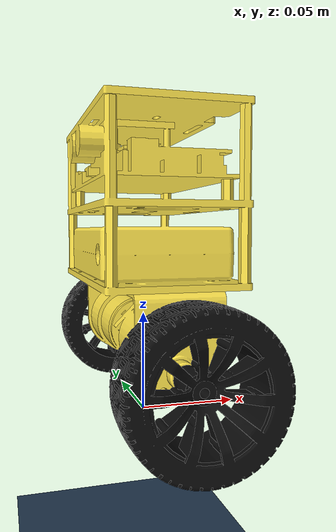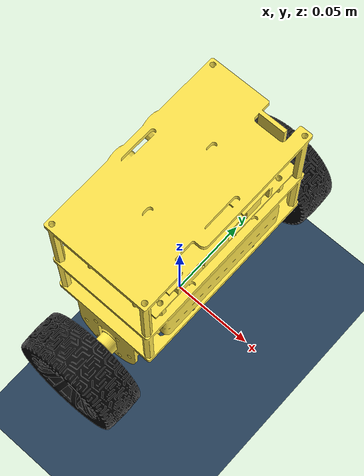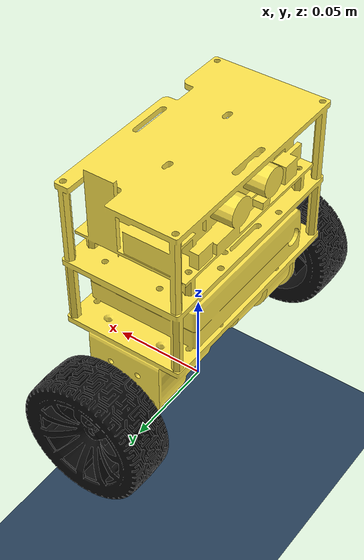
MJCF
<mujoco model="golf scene">
  <compiler angle="radian"/>
  <option timestep="0.000025"/>

  <include file="balance_bike.xml"/>

  <statistic center="0 0 0.1" extent="0.8"/>

  <visual>
    <headlight diffuse="0.6 0.6 0.6" ambient="0.3 0.3 0.3" specular="0 0 0"/>
    <rgba haze="0.15 0.25 0.35 1"/>
    <global azimuth="120" elevation="-20"/>
  </visual>

  <asset>
    <texture type="skybox" builtin="gradient" rgb1="0.8 0.8 0.8" rgb2="0 0 0" width="512" height="3072"/>
    <texture type="2d" name="groundplane" builtin="checker" mark="edge" rgb1="0.2 0.3 0.4" rgb2="0.1 0.2 0.3"
      markrgb="0.8 0.8 0.8" width="300" height="300"/>
    <material name="groundplane" texture="groundplane" texuniform="true" texrepeat="5 5" reflectance="0.2"/>
    <texture type="2d" name="wheel_texture" builtin="checker" mark="edge" rgb1="0.0 0.0 0.0" rgb2="0.2 0.2 0.2"
      markrgb="0.3 0.3 0.3" width="300" height="300"/>
    <material name="wheel_material" texture="wheel_texture" texuniform="true" texrepeat="5 5"/>
  </asset>

  <worldbody>
    <light pos="0 0 1.5" dir="-0.5 -0.5 -1" directional="true"/>
    <geom name="floor" size="0 0 0.05" pos="0 0 -0.1" type="plane" material="groundplane"/>
  </worldbody>

  <contact>
    <pair geom1="floor" geom2="l_wheel_geom" friction="0.4 0.4 0.07 0.001 0.001"/>
    <pair geom1="floor" geom2="r_wheel_geom" friction="0.4 0.4 0.07 0.001 0.001"/>
  </contact>

</mujoco>

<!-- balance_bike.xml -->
<mujoco model="balance_bike">
    <compiler angle="radian" meshdir="meshes"/>
    <size njmax="500" nconmax="100"/>
    <asset>
        <mesh name="frame" file="frame.STL"/>
        <mesh name="leftwheel" file="leftwheel.STL"/>
        <mesh name="rightwheel" file="rightwheel.STL"/>
    </asset>
    <option gravity="0 0 -9.81" viscosity="0.002"/>
    <worldbody>
        <body name="golf_main" euler="0 3.14 0" pos="0 0 0.07">
            <joint name="golf_free" type="free" damping="0.5"/>

            <body name="frame">
                <inertial pos="0 0 0" quat="0.707107 0 0 0.707107"
                          mass="0.687" diaginertia="0.0010866 0.0016358 0.0010183"/>
                <geom type="mesh" rgba="1 0.9 0.3 1" mesh="frame"/>

                <body name="leftwheel" pos="-0.00041408 -0.08048 0.036937">
                    <inertial pos="0 0 0" quat="0.707107 0 0 0.707107"
                              mass="0.035" diaginertia="1.9757e-05 1.185e-05 1.185e-05"/>
                    <joint name="lunL" type="hinge" pos="0 0 0" axis="0 1 0" damping="0.05"/>
                    <!-- 添加 name 属性，与 scene.xml 中的接触对匹配 -->
                    <geom name="l_wheel_geom" type="mesh" rgba="0.05 0.05 0.05 1" mesh="leftwheel" contype="1" conaffinity="2"/>
                    <geom type="mesh" rgba="0.05 0.05 0.05 1" mesh="leftwheel"/>
                </body>

                <body name="rightwheel" pos="-0.00041408 0.08048 0.036937">
                    <inertial pos="0 0 0" quat="0.707107 0 0 0.707107"
                              mass="0.035" diaginertia="1.9757e-05 1.185e-05 1.185e-05"/>
                    <joint name="lunR" type="hinge" pos="0 0 0" axis="0 1 0" damping="0.05"/>
                    <!-- 添加 name 属性 -->
                    <geom name="r_wheel_geom" type="mesh" rgba="0.05 0.05 0.05 1" mesh="rightwheel" contype="1" conaffinity="2"/>
                    <geom type="mesh" rgba="0.05 0.05 0.05 1" mesh="rightwheel"/>
                </body>
            </body>
        </body>
    </worldbody>

    <actuator>
        <motor name="left_motor" joint="lunL" gear="1" ctrllimited="true" ctrlrange="-5 5"/>
        <motor name="right_motor" joint="lunR" gear="1" ctrllimited="true" ctrlrange="-5 5"/>
    </actuator>
</mujoco>
